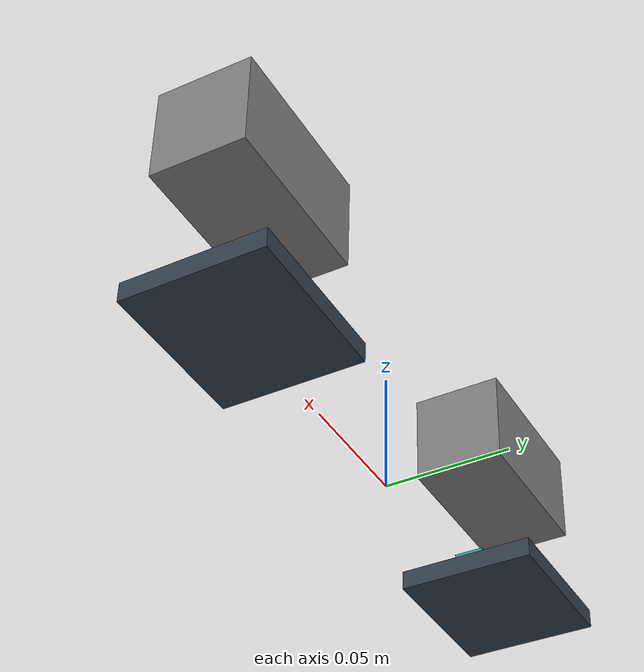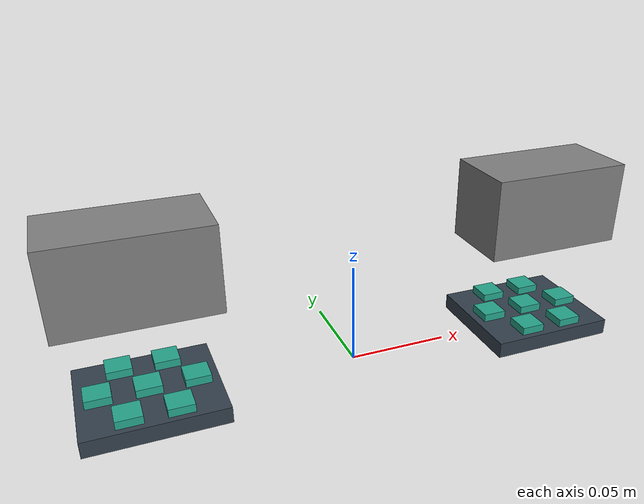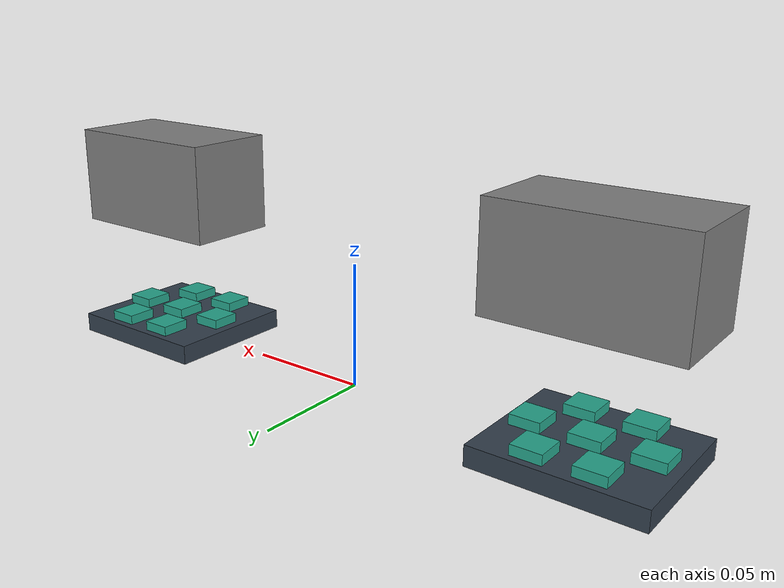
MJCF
<?xml version="1.0" encoding="utf-8"?>
<!-- Synthetic teaching modules, not a manufacturer's model or a calibrated sensor. -->
<mujoco model="seven_pad_named_instances">
  <option timestep="0.001" integrator="implicit" cone="elliptic" />
  <worldbody>
    <body name="mount_1" pos="-0.1 0 0">
      <body name="SevenPad-1__sensor_root" pos="0 0 0" quat="1 0 0 0">
        <site name="SevenPad-1__sensor_base" pos="0 0 0" size="0.001" group="4" />
        <site name="SevenPad-1__range_frame" pos="0 0 0.012" size="0.001" group="4" />
        <geom name="SevenPad-1__housing_visual" type="box" pos="0 0 0.004" size="0.032 0.028 0.004" material="SevenPad-1__housing_material" contype="0" conaffinity="0" mass="0" group="1" />
        <body name="SevenPad-1__force_f1" pos="0 0 0.010">
          <geom name="SevenPad-1__force_f1_shape" type="box" size="0.006 0.006 0.002" material="SevenPad-1__pad_material" />
        </body>
        <body name="SevenPad-1__force_f2" pos="0.022 0 0.010">
          <geom name="SevenPad-1__force_f2_shape" type="box" size="0.006 0.006 0.002" material="SevenPad-1__pad_material" />
        </body>
        <body name="SevenPad-1__force_f3" pos="0.011 0.019 0.010">
          <geom name="SevenPad-1__force_f3_shape" type="box" size="0.006 0.006 0.002" material="SevenPad-1__pad_material" />
        </body>
        <body name="SevenPad-1__force_f4" pos="-0.011 0.019 0.010">
          <geom name="SevenPad-1__force_f4_shape" type="box" size="0.006 0.006 0.002" material="SevenPad-1__pad_material" />
        </body>
        <body name="SevenPad-1__force_f5" pos="-0.022 0 0.010">
          <geom name="SevenPad-1__force_f5_shape" type="box" size="0.006 0.006 0.002" material="SevenPad-1__pad_material" />
        </body>
        <body name="SevenPad-1__force_f6" pos="-0.011 -0.019 0.010">
          <geom name="SevenPad-1__force_f6_shape" type="box" size="0.006 0.006 0.002" material="SevenPad-1__pad_material" />
        </body>
        <body name="SevenPad-1__force_f7" pos="0.011 -0.019 0.010">
          <geom name="SevenPad-1__force_f7_shape" type="box" size="0.006 0.006 0.002" material="SevenPad-1__pad_material" />
        </body>
      </body>
    </body>
    <!-- Independent 0.1 kg and 0.2 kg loads cover each module's seven pads. -->
    <body name="load_1" pos="-0.1 0 0.07">
      <freejoint />
      <geom type="box" size="0.035 0.019 0.02" mass="0.1" />
    </body>
    <body name="mount_2" pos="0.1 0 0">
      <body name="SevenPad-2__sensor_root" pos="0 0 0" quat="1 0 0 0">
        <site name="SevenPad-2__sensor_base" pos="0 0 0" size="0.001" group="4" />
        <site name="SevenPad-2__range_frame" pos="0 0 0.012" size="0.001" group="4" />
        <geom name="SevenPad-2__housing_visual" type="box" pos="0 0 0.004" size="0.032 0.028 0.004" material="SevenPad-2__housing_material" contype="0" conaffinity="0" mass="0" group="1" />
        <body name="SevenPad-2__force_f1" pos="0 0 0.010">
          <geom name="SevenPad-2__force_f1_shape" type="box" size="0.006 0.006 0.002" material="SevenPad-2__pad_material" />
        </body>
        <body name="SevenPad-2__force_f2" pos="0.022 0 0.010">
          <geom name="SevenPad-2__force_f2_shape" type="box" size="0.006 0.006 0.002" material="SevenPad-2__pad_material" />
        </body>
        <body name="SevenPad-2__force_f3" pos="0.011 0.019 0.010">
          <geom name="SevenPad-2__force_f3_shape" type="box" size="0.006 0.006 0.002" material="SevenPad-2__pad_material" />
        </body>
        <body name="SevenPad-2__force_f4" pos="-0.011 0.019 0.010">
          <geom name="SevenPad-2__force_f4_shape" type="box" size="0.006 0.006 0.002" material="SevenPad-2__pad_material" />
        </body>
        <body name="SevenPad-2__force_f5" pos="-0.022 0 0.010">
          <geom name="SevenPad-2__force_f5_shape" type="box" size="0.006 0.006 0.002" material="SevenPad-2__pad_material" />
        </body>
        <body name="SevenPad-2__force_f6" pos="-0.011 -0.019 0.010">
          <geom name="SevenPad-2__force_f6_shape" type="box" size="0.006 0.006 0.002" material="SevenPad-2__pad_material" />
        </body>
        <body name="SevenPad-2__force_f7" pos="0.011 -0.019 0.010">
          <geom name="SevenPad-2__force_f7_shape" type="box" size="0.006 0.006 0.002" material="SevenPad-2__pad_material" />
        </body>
      </body>
    </body>
    <body name="load_2" pos="0.1 0 0.07">
      <freejoint />
      <geom type="box" size="0.035 0.019 0.02" mass="0.2" />
    </body>
  </worldbody>
  <asset>
    <material name="SevenPad-1__pad_material" rgba="0.15 0.65 0.55 1" />
    <material name="SevenPad-1__housing_material" rgba="0.2 0.25 0.3 1" />
    <material name="SevenPad-2__pad_material" rgba="0.15 0.65 0.55 1" />
    <material name="SevenPad-2__housing_material" rgba="0.2 0.25 0.3 1" />
  </asset>
  <!-- Exact mount sites anchor local pad/ray names; each DLL instance has its own noise seed. -->
  <custom>
    <text name="orca.sensor.v1/SevenPad-1/plugin" data="com.orca.examples.seven_pad" />
    <tuple name="orca.sensor.v1/SevenPad-1/object/force_f1">
      <element objtype="body" objname="SevenPad-1__force_f1" />
    </tuple>
    <tuple name="orca.sensor.v1/SevenPad-1/object/force_f2">
      <element objtype="body" objname="SevenPad-1__force_f2" />
    </tuple>
    <tuple name="orca.sensor.v1/SevenPad-1/object/force_f3">
      <element objtype="body" objname="SevenPad-1__force_f3" />
    </tuple>
    <tuple name="orca.sensor.v1/SevenPad-1/object/force_f4">
      <element objtype="body" objname="SevenPad-1__force_f4" />
    </tuple>
    <tuple name="orca.sensor.v1/SevenPad-1/object/force_f5">
      <element objtype="body" objname="SevenPad-1__force_f5" />
    </tuple>
    <tuple name="orca.sensor.v1/SevenPad-1/object/force_f6">
      <element objtype="body" objname="SevenPad-1__force_f6" />
    </tuple>
    <tuple name="orca.sensor.v1/SevenPad-1/object/force_f7">
      <element objtype="body" objname="SevenPad-1__force_f7" />
    </tuple>
    <tuple name="orca.sensor.v1/SevenPad-1/object/range_frame">
      <element objtype="site" objname="SevenPad-1__range_frame" />
    </tuple>
    <text name="orca.sensor.v1/SevenPad-1/seed" data="1" />
    <numeric name="orca.sensor.v1/SevenPad-1/config/noise_scale" data="0.01" />
    <text name="orca.sensor.v1/SevenPad-2/plugin" data="com.orca.examples.seven_pad" />
    <tuple name="orca.sensor.v1/SevenPad-2/object/force_f1">
      <element objtype="body" objname="SevenPad-2__force_f1" />
    </tuple>
    <tuple name="orca.sensor.v1/SevenPad-2/object/force_f2">
      <element objtype="body" objname="SevenPad-2__force_f2" />
    </tuple>
    <tuple name="orca.sensor.v1/SevenPad-2/object/force_f3">
      <element objtype="body" objname="SevenPad-2__force_f3" />
    </tuple>
    <tuple name="orca.sensor.v1/SevenPad-2/object/force_f4">
      <element objtype="body" objname="SevenPad-2__force_f4" />
    </tuple>
    <tuple name="orca.sensor.v1/SevenPad-2/object/force_f5">
      <element objtype="body" objname="SevenPad-2__force_f5" />
    </tuple>
    <tuple name="orca.sensor.v1/SevenPad-2/object/force_f6">
      <element objtype="body" objname="SevenPad-2__force_f6" />
    </tuple>
    <tuple name="orca.sensor.v1/SevenPad-2/object/force_f7">
      <element objtype="body" objname="SevenPad-2__force_f7" />
    </tuple>
    <tuple name="orca.sensor.v1/SevenPad-2/object/range_frame">
      <element objtype="site" objname="SevenPad-2__range_frame" />
    </tuple>
    <text name="orca.sensor.v1/SevenPad-2/seed" data="2" />
    <numeric name="orca.sensor.v1/SevenPad-2/config/noise_scale" data="0.01" />
  </custom>
</mujoco>
